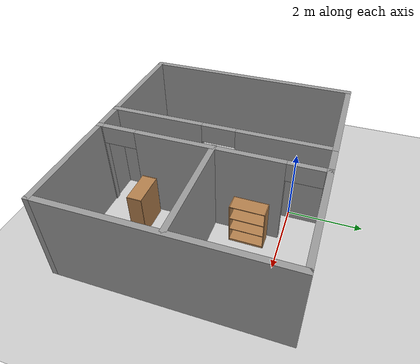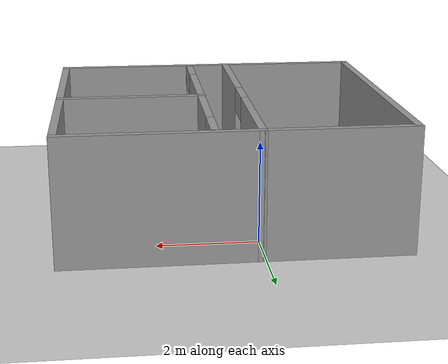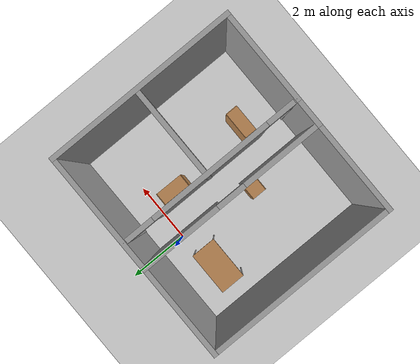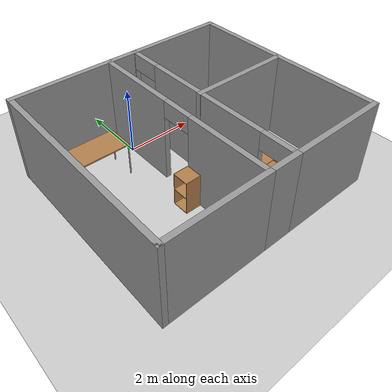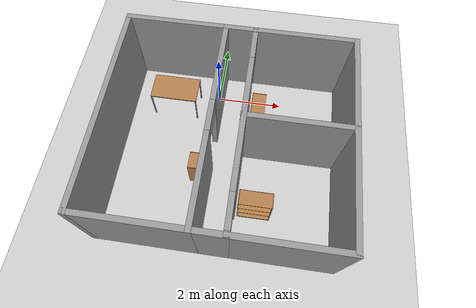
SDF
<sdf version="1.6">
 <world name="default">
  <light name="sun" type="directional">
   <pose>0 0 10 0 -0 0</pose>
   <diffuse>0.8 0.8 0.8 1</diffuse>
   <specular>0.1 0.1 0.1 1</specular>
   <attenuation>
    <range>1000</range>
    <constant>0.9</constant>
    <linear>0.01</linear>
    <quadratic>0.001</quadratic>
   </attenuation>
   <direction>-0.5 0.5 -1</direction>
  </light>
  <model name="ground_plane">
   <static>1</static>
   <link name="link">
    <collision name="collision">
     <geometry><plane><normal>0 0 1</normal><size>100 100</size></plane></geometry>
     <surface><friction><ode><mu>100</mu><mu2>50</mu2></ode></friction></surface>
    </collision>
    <visual name="visual">
     <cast_shadows>0</cast_shadows>
     <geometry><plane><normal>0 0 1</normal><size>100 100</size></plane></geometry>
     <material>
      <script><uri>file://media/materials/scripts/gazebo.material</uri><name>Gazebo/Grey</name></script>
     </material>
    </visual>
   </link>
  </model>
  <gravity>0 0 -9.8</gravity>
  <magnetic_field>6e-06 2.3e-05 -4.2e-05</magnetic_field>
  <atmosphere type="adiabatic"/>
  <physics name="default_physics" default="0" type="ode">
   <max_step_size>0.001</max_step_size>
   <real_time_factor>1</real_time_factor>
   <real_time_update_rate>1000</real_time_update_rate>
  </physics>
  <scene><ambient>0.4 0.4 0.4 1</ambient><background>0.7 0.7 0.7 1</background><shadows>1</shadows></scene>
  <spherical_coordinates>
   <surface_model>EARTH_WGS84</surface_model>
   <latitude_deg>0</latitude_deg>
   <longitude_deg>0</longitude_deg>
   <elevation>0</elevation>
   <heading_deg>0</heading_deg>
  </spherical_coordinates>
  <model name="rooms">
   <pose>0.515176 -2.02758 0 0 -0 0</pose>
   <link name="Wall_1">
    <collision name="Wall_1_Collision">
     <geometry><box><size>6 0.15 2.5</size></box></geometry>
     <pose>0 0 1.25 0 -0 0</pose>
    </collision>
    <visual name="Wall_1_Visual">
     <pose>0 0 1.25 0 -0 0</pose>
     <geometry><box><size>6 0.15 2.5</size></box></geometry>
     <material>
      <script><uri>file://media/materials/scripts/gazebo.material</uri><name>Gazebo/Grey</name></script>
      <ambient>1 1 1 1</ambient>
     </material>
    </visual>
    <pose>3.275 0 0 0 0 -1.5708</pose>
   </link>
   <link name="Wall_15">
    <collision name="Wall_15_Collision">
     <geometry><box><size>3 0.15 2.5</size></box></geometry>
     <pose>0 0 1.25 0 -0 0</pose>
    </collision>
    <visual name="Wall_15_Visual">
     <pose>0 0 1.25 0 -0 0</pose>
     <geometry><box><size>3 0.15 2.5</size></box></geometry>
     <material>
      <script><uri>file://media/materials/scripts/gazebo.material</uri><name>Gazebo/Grey</name></script>
      <ambient>1 1 1 1</ambient>
     </material>
    </visual>
    <pose>1.85 -2.925 0 0 -0 3.14159</pose>
   </link>
   <link name="Wall_17">
    <pose>0.425 0 0 0 -0 1.5708</pose>
    <visual name="Wall_17_Visual_0">
     <pose>-2.91078 0 1.25 0 -0 0</pose>
     <geometry><box><size>0.178433 0.15 2.5</size></box></geometry>
     <material>
      <script><uri>file://media/materials/scripts/gazebo.material</uri><name>Gazebo/Grey</name></script>
      <ambient>1 1 1 1</ambient>
     </material>
    </visual>
    <collision name="Wall_17_Collision_0">
     <geometry><box><size>0.178433 0.15 2.5</size></box></geometry>
     <pose>-2.91078 0 1.25 0 -0 0</pose>
    </collision>
    <visual name="Wall_17_Visual_1">
     <pose>0.006241 0 1.25 0 -0 0</pose>
     <geometry><box><size>3.85562 0.15 2.5</size></box></geometry>
     <material>
      <script><uri>file://media/materials/scripts/gazebo.material</uri><name>Gazebo/Grey</name></script>
      <ambient>1 1 1 1</ambient>
     </material>
    </visual>
    <collision name="Wall_17_Collision_1">
     <geometry><box><size>3.85562 0.15 2.5</size></box></geometry>
     <pose>0.006241 0 1.25 0 -0 0</pose>
    </collision>
    <visual name="Wall_17_Visual_2">
     <pose>2.91702 0 1.25 0 -0 0</pose>
     <geometry><box><size>0.165951 0.15 2.5</size></box></geometry>
     <material>
      <script><uri>file://media/materials/scripts/gazebo.material</uri><name>Gazebo/Grey</name></script>
      <ambient>1 1 1 1</ambient>
     </material>
    </visual>
    <collision name="Wall_17_Collision_2">
     <geometry><box><size>0.165951 0.15 2.5</size></box></geometry>
     <pose>2.91702 0 1.25 0 -0 0</pose>
    </collision>
    <visual name="Wall_17_Visual_3">
     <pose>-2.37157 0 2.25 0 -0 0</pose>
     <geometry><box><size>0.9 0.15 0.5</size></box></geometry>
     <material>
      <script><uri>file://media/materials/scripts/gazebo.material</uri><name>Gazebo/Grey</name></script>
      <ambient>1 1 1 1</ambient>
     </material>
    </visual>
    <collision name="Wall_17_Collision_3">
     <geometry><box><size>0.9 0.15 0.5</size></box></geometry>
     <pose>-2.37157 0 2.25 0 -0 0</pose>
    </collision>
    <visual name="Wall_17_Visual_4">
     <pose>2.38405 0 2.25 0 -0 0</pose>
     <geometry><box><size>0.9 0.15 0.5</size></box></geometry>
     <material>
      <script><uri>file://media/materials/scripts/gazebo.material</uri><name>Gazebo/Grey</name></script>
      <ambient>1 1 1 1</ambient>
     </material>
    </visual>
    <collision name="Wall_17_Collision_4">
     <geometry><box><size>0.9 0.15 0.5</size></box></geometry>
     <pose>2.38405 0 2.25 0 -0 0</pose>
    </collision>
   </link>
   <link name="Wall_19">
    <collision name="Wall_19_Collision">
     <geometry><box><size>1 0.15 2.5</size></box></geometry>
     <pose>0 0 1.25 0 -0 0</pose>
    </collision>
    <visual name="Wall_19_Visual">
     <pose>0 0 1.25 0 -0 0</pose>
     <geometry><box><size>1 0.15 2.5</size></box></geometry>
     <material>
      <script><uri>file://media/materials/scripts/gazebo.material</uri><name>Gazebo/Grey</name></script>
      <ambient>1 1 1 1</ambient>
     </material>
    </visual>
    <pose>0 -2.925 0 0 -0 3.14159</pose>
   </link>
   <link name="Wall_20">
    <pose>-0.425 0 0 0 -0 1.5708</pose>
    <visual name="Wall_20_Visual_0">
     <pose>-1.7245 0 1.25 0 -0 0</pose>
     <geometry><box><size>2.551 0.15 2.5</size></box></geometry>
     <material>
      <script><uri>file://media/materials/scripts/gazebo.material</uri><name>Gazebo/Grey</name></script>
      <ambient>1 1 1 1</ambient>
     </material>
    </visual>
    <collision name="Wall_20_Collision_0">
     <geometry><box><size>2.551 0.15 2.5</size></box></geometry>
     <pose>-1.7245 0 1.25 0 -0 0</pose>
    </collision>
    <visual name="Wall_20_Visual_1">
     <pose>1.7255 0 1.25 0 -0 0</pose>
     <geometry><box><size>2.549 0.15 2.5</size></box></geometry>
     <material>
      <script><uri>file://media/materials/scripts/gazebo.material</uri><name>Gazebo/Grey</name></script>
      <ambient>1 1 1 1</ambient>
     </material>
    </visual>
    <collision name="Wall_20_Collision_1">
     <geometry><box><size>2.549 0.15 2.5</size></box></geometry>
     <pose>1.7255 0 1.25 0 -0 0</pose>
    </collision>
    <visual name="Wall_20_Visual_2">
     <pose>0.000998 0 2.25 0 -0 0</pose>
     <geometry><box><size>0.9 0.15 0.5</size></box></geometry>
     <material>
      <script><uri>file://media/materials/scripts/gazebo.material</uri><name>Gazebo/Grey</name></script>
      <ambient>1 1 1 1</ambient>
     </material>
    </visual>
    <collision name="Wall_20_Collision_2">
     <geometry><box><size>0.9 0.15 0.5</size></box></geometry>
     <pose>0.000998 0 2.25 0 -0 0</pose>
    </collision>
   </link>
   <link name="Wall_22">
    <collision name="Wall_22_Collision">
     <geometry><box><size>3 0.15 2.5</size></box></geometry>
     <pose>0 0 1.25 0 -0 0</pose>
    </collision>
    <visual name="Wall_22_Visual">
     <pose>0 0 1.25 0 -0 0</pose>
     <geometry><box><size>3 0.15 2.5</size></box></geometry>
     <material>
      <script><uri>file://media/materials/scripts/gazebo.material</uri><name>Gazebo/Grey</name></script>
      <ambient>1 1 1 1</ambient>
     </material>
    </visual>
    <pose>-1.85 -2.925 0 0 -0 3.14159</pose>
   </link>
   <link name="Wall_26">
    <collision name="Wall_26_Collision">
     <geometry><box><size>3 0.15 2.5</size></box></geometry>
     <pose>0 0 1.25 0 -0 0</pose>
    </collision>
    <visual name="Wall_26_Visual">
     <pose>0 0 1.25 0 -0 0</pose>
     <geometry><box><size>3 0.15 2.5</size></box></geometry>
     <material>
      <script><uri>file://media/materials/scripts/gazebo.material</uri><name>Gazebo/Grey</name></script>
      <ambient>1 1 1 1</ambient>
     </material>
    </visual>
    <pose>-1.85 2.925 0 0 -0 3.14159</pose>
   </link>
   <link name="Wall_27">
    <collision name="Wall_27_Collision">
     <geometry><box><size>6 0.15 2.5</size></box></geometry>
     <pose>0 0 1.25 0 -0 0</pose>
    </collision>
    <visual name="Wall_27_Visual">
     <pose>0 0 1.25 0 -0 0</pose>
     <geometry><box><size>6 0.15 2.5</size></box></geometry>
     <material>
      <script><uri>file://media/materials/scripts/gazebo.material</uri><name>Gazebo/Grey</name></script>
      <ambient>1 1 1 1</ambient>
     </material>
    </visual>
    <pose>-3.275 0 0 0 0 -1.5708</pose>
   </link>
   <link name="Wall_29">
    <collision name="Wall_29_Collision">
     <geometry><box><size>3.85 0.15 2.5</size></box></geometry>
     <pose>0 0 1.25 0 -0 0</pose>
    </collision>
    <visual name="Wall_29_Visual">
     <pose>0 0 1.25 0 -0 0</pose>
     <geometry><box><size>3.85 0.15 2.5</size></box></geometry>
     <material>
      <script><uri>file://media/materials/scripts/gazebo.material</uri><name>Gazebo/Grey</name></script>
      <ambient>1 1 1 1</ambient>
     </material>
    </visual>
    <pose>1.425 2.925 0 0 -0 0</pose>
   </link>
   <link name="Wall_37">
    <collision name="Wall_37_Collision">
     <geometry><box><size>3 0.15 2.5</size></box></geometry>
     <pose>0 0 1.25 0 -0 0</pose>
    </collision>
    <visual name="Wall_37_Visual">
     <pose>0 0 1.25 0 -0 0</pose>
     <geometry><box><size>3 0.15 2.5</size></box></geometry>
     <material>
      <script><uri>file://media/materials/scripts/gazebo.material</uri><name>Gazebo/Grey</name></script>
      <ambient>1 1 1 1</ambient>
     </material>
    </visual>
    <pose>1.83811 0.137877 0 0 -0 0</pose>
   </link>
   <static>1</static>
  </model>
  <model name="bookshelf">
   <static>1</static>
   <link name="link">
    <inertial><mass>1</mass></inertial>
    <collision name="back">
     <pose>0 0.005 0.6 0 -0 0</pose>
     <geometry><box><size>0.9 0.01 1.2</size></box></geometry>
    </collision>
    <visual name="visual1">
     <pose>0 0.005 0.6 0 -0 0</pose>
     <geometry><box><size>0.9 0.01 1.2</size></box></geometry>
     <material>
      <script><uri>file://media/materials/scripts/gazebo.material</uri><name>Gazebo/Wood</name></script>
     </material>
    </visual>
    <collision name="left_side">
     <pose>0.45 -0.195 0.6 0 -0 0</pose>
     <geometry><box><size>0.02 0.4 1.2</size></box></geometry>
    </collision>
    <visual name="visual2">
     <pose>0.45 -0.195 0.6 0 -0 0</pose>
     <geometry><box><size>0.02 0.4 1.2</size></box></geometry>
     <material>
      <script><uri>file://media/materials/scripts/gazebo.material</uri><name>Gazebo/Wood</name></script>
     </material>
    </visual>
    <collision name="right_side">
     <pose>-0.45 -0.195 0.6 0 -0 0</pose>
     <geometry><box><size>0.02 0.4 1.2</size></box></geometry>
    </collision>
    <visual name="visual3">
     <pose>-0.45 -0.195 0.6 0 -0 0</pose>
     <geometry><box><size>0.02 0.4 1.2</size></box></geometry>
     <material>
      <script><uri>file://media/materials/scripts/gazebo.material</uri><name>Gazebo/Wood</name></script>
     </material>
    </visual>
    <collision name="bottom">
     <pose>0 -0.195 0.03 0 -0 0</pose>
     <geometry><box><size>0.88 0.4 0.06</size></box></geometry>
    </collision>
    <visual name="visual4">
     <pose>0 -0.195 0.03 0 -0 0</pose>
     <geometry><box><size>0.88 0.4 0.06</size></box></geometry>
     <material>
      <script><uri>file://media/materials/scripts/gazebo.material</uri><name>Gazebo/Wood</name></script>
     </material>
    </visual>
    <collision name="top">
     <pose>0 -0.195 1.19 0 -0 0</pose>
     <geometry><box><size>0.88 0.4 0.02</size></box></geometry>
    </collision>
    <visual name="visual5">
     <pose>0 -0.195 1.19 0 -0 0</pose>
     <geometry><box><size>0.88 0.4 0.02</size></box></geometry>
     <material>
      <script><uri>file://media/materials/scripts/gazebo.material</uri><name>Gazebo/Wood</name></script>
     </material>
    </visual>
    <collision name="low_shelf">
     <pose>0 -0.195 0.43 0 -0 0</pose>
     <geometry><box><size>0.88 0.4 0.02</size></box></geometry>
    </collision>
    <visual name="visual6">
     <pose>0 -0.195 0.43 0 -0 0</pose>
     <geometry><box><size>0.88 0.4 0.02</size></box></geometry>
     <material>
      <script><uri>file://media/materials/scripts/gazebo.material</uri><name>Gazebo/Wood</name></script>
     </material>
    </visual>
    <collision name="high_shelf">
     <pose>0 -0.195 0.8 0 -0 0</pose>
     <geometry><box><size>0.88 0.4 0.02</size></box></geometry>
    </collision>
    <visual name="visual7">
     <pose>0 -0.195 0.8 0 -0 0</pose>
     <geometry><box><size>0.88 0.4 0.02</size></box></geometry>
     <material>
      <script><uri>file://media/materials/scripts/gazebo.material</uri><name>Gazebo/Wood</name></script>
     </material>
    </visual>
   </link>
   <pose>1.09096 -0.833451 0 0 -0 1.56179</pose>
  </model>
  <model name="table">
   <static>0</static>
   <link name="link">
    <collision name="surface">
     <pose>0 0 1 0 -0 0</pose>
     <geometry><box><size>1.5 0.8 0.03</size></box></geometry>
     <surface><friction><ode><mu>0.6</mu><mu2>0.6</mu2></ode></friction></surface>
    </collision>
    <visual name="visual1">
     <pose>0 0 1 0 -0 0</pose>
     <geometry><box><size>1.4 0.8 0.04</size></box></geometry>
     <material>
      <script><uri>file://media/materials/scripts/gazebo.material</uri><name>Gazebo/Wood</name></script>
     </material>
    </visual>
    <collision name="front_left_leg">
     <pose>0.68 0.38 0.5 0 -0 0</pose>
     <geometry><cylinder><radius>0.02</radius><length>1</length></cylinder></geometry>
    </collision>
    <visual name="front_left_leg">
     <pose>0.68 0.38 0.5 0 -0 0</pose>
     <geometry><cylinder><radius>0.02</radius><length>1</length></cylinder></geometry>
     <material>
      <script><uri>file://media/materials/scripts/gazebo.material</uri><name>Gazebo/Grey</name></script>
     </material>
    </visual>
    <collision name="front_right_leg">
     <pose>0.68 -0.38 0.5 0 -0 0</pose>
     <geometry><cylinder><radius>0.02</radius><length>1</length></cylinder></geometry>
    </collision>
    <visual name="front_right_leg">
     <pose>0.68 -0.38 0.5 0 -0 0</pose>
     <geometry><cylinder><radius>0.02</radius><length>1</length></cylinder></geometry>
     <material>
      <script><uri>file://media/materials/scripts/gazebo.material</uri><name>Gazebo/Grey</name></script>
     </material>
    </visual>
    <collision name="back_right_leg">
     <pose>-0.68 -0.38 0.5 0 -0 0</pose>
     <geometry><cylinder><radius>0.02</radius><length>1</length></cylinder></geometry>
    </collision>
    <visual name="back_right_leg">
     <pose>-0.68 -0.38 0.5 0 -0 0</pose>
     <geometry><cylinder><radius>0.02</radius><length>1</length></cylinder></geometry>
     <material>
      <script><uri>file://media/materials/scripts/gazebo.material</uri><name>Gazebo/Grey</name></script>
     </material>
    </visual>
    <collision name="back_left_leg">
     <pose>-0.68 0.38 0.5 0 -0 0</pose>
     <geometry><cylinder><radius>0.02</radius><length>1</length></cylinder></geometry>
    </collision>
    <visual name="back_left_leg">
     <pose>-0.68 0.38 0.5 0 -0 0</pose>
     <geometry><cylinder><radius>0.02</radius><length>1</length></cylinder></geometry>
     <material>
      <script><uri>file://media/materials/scripts/gazebo.material</uri><name>Gazebo/Grey</name></script>
     </material>
    </visual>
    <inertial>
     <inertia><ixx>1</ixx><ixy>0</ixy><ixz>0</ixz><iyy>1</iyy><iyz>0</iyz><izz>1</izz></inertia>
     <mass>1</mass>
    </inertial>
   </link>
   <pose>-1.29511 -0.411235 -1e-06 1e-06 -0 0</pose>
  </model>
  <model name="cabinet">
   <static>1</static>
   <link name="cabinet_bottom_plate">
    <inertial>
     <pose>0 0 -1 0 -0 0</pose>
     <inertia><ixx>2.05</ixx><ixy>0</ixy><ixz>0</ixz><iyy>2.05</iyy><iyz>0</iyz><izz>2.05</izz></inertia>
     <mass>25</mass>
    </inertial>
    <collision name="cabinet_bottom_plate_geom">
     <pose>0 0 0.01 0 -0 0</pose>
     <geometry><box><size>0.45 0.45 0.02</size></box></geometry>
    </collision>
    <visual name="cabinet_bottom_plate_geom_visual">
     <pose>0 0 0.01 0 -0 0</pose>
     <geometry><box><size>0.45 0.45 0.02</size></box></geometry>
     <material>
      <script><uri>file://media/materials/scripts/gazebo.material</uri><name>Gazebo/Wood</name></script>
     </material>
    </visual>
    <collision name="cabinet_bottom_plate_geom_cabinet_back_plate">
     <pose>0.235 0 0.51 0 -0 0</pose>
     <geometry><box><size>0.02 0.45 1.02</size></box></geometry>
    </collision>
    <visual name="cabinet_bottom_plate_geom_cabinet_back_plate_visual">
     <pose>0.235 0 0.51 0 -0 0</pose>
     <geometry><box><size>0.02 0.45 1.02</size></box></geometry>
     <material>
      <script><uri>file://media/materials/scripts/gazebo.material</uri><name>Gazebo/Wood</name></script>
     </material>
    </visual>
    <collision name="cabinet_bottom_plate_geom_cabinet_left_plate">
     <pose>0 0.235 0.51 0 -0 0</pose>
     <geometry><box><size>0.45 0.02 1.02</size></box></geometry>
    </collision>
    <visual name="cabinet_bottom_plate_geom_cabinet_left_plate_visual">
     <pose>0 0.235 0.51 0 -0 0</pose>
     <geometry><box><size>0.45 0.02 1.02</size></box></geometry>
     <material>
      <script><uri>file://media/materials/scripts/gazebo.material</uri><name>Gazebo/Wood</name></script>
     </material>
    </visual>
    <collision name="cabinet_bottom_plate_geom_cabinet_middle_plate">
     <pose>0 0 0.51 0 -0 0</pose>
     <geometry><box><size>0.45 0.45 0.02</size></box></geometry>
    </collision>
    <visual name="cabinet_bottom_plate_geom_cabinet_middle_plate_visual">
     <pose>0 0 0.51 0 -0 0</pose>
     <geometry><box><size>0.45 0.45 0.02</size></box></geometry>
     <material>
      <script><uri>file://media/materials/scripts/gazebo.material</uri><name>Gazebo/Wood</name></script>
     </material>
    </visual>
    <collision name="cabinet_bottom_plate_geom_cabinet_right_plate">
     <pose>0 -0.235 0.51 0 -0 0</pose>
     <geometry><box><size>0.45 0.02 1.02</size></box></geometry>
    </collision>
    <visual name="cabinet_bottom_plate_geom_cabinet_right_plate_visual">
     <pose>0 -0.235 0.51 0 -0 0</pose>
     <geometry><box><size>0.45 0.02 1.02</size></box></geometry>
     <material>
      <script><uri>file://media/materials/scripts/gazebo.material</uri><name>Gazebo/Wood</name></script>
     </material>
    </visual>
    <collision name="cabinet_bottom_plate_geom_cabinet_top_plate">
     <pose>0 0 1.01 0 -0 0</pose>
     <geometry><box><size>0.45 0.45 0.02</size></box></geometry>
    </collision>
    <visual name="cabinet_bottom_plate_geom_cabinet_top_plate_visual">
     <pose>0 0 1.01 0 -0 0</pose>
     <geometry><box><size>0.45 0.45 0.02</size></box></geometry>
     <material>
      <script><uri>file://media/materials/scripts/gazebo.material</uri><name>Gazebo/Wood</name></script>
     </material>
    </visual>
   </link>
   <pose>-0.223303 -2.71597 0 0 -0 0</pose>
  </model>
  <model name="bookshelf_0">
   <static>1</static>
   <link name="link">
    <inertial><mass>1</mass></inertial>
    <collision name="back">
     <pose>0 0.005 0.6 0 -0 0</pose>
     <geometry><box><size>0.9 0.01 1.2</size></box></geometry>
    </collision>
    <visual name="visual1">
     <pose>0 0.005 0.6 0 -0 0</pose>
     <geometry><box><size>0.9 0.01 1.2</size></box></geometry>
     <material>
      <script><uri>file://media/materials/scripts/gazebo.material</uri><name>Gazebo/Wood</name></script>
     </material>
    </visual>
    <collision name="left_side">
     <pose>0.45 -0.195 0.6 0 -0 0</pose>
     <geometry><box><size>0.02 0.4 1.2</size></box></geometry>
    </collision>
    <visual name="visual2">
     <pose>0.45 -0.195 0.6 0 -0 0</pose>
     <geometry><box><size>0.02 0.4 1.2</size></box></geometry>
     <material>
      <script><uri>file://media/materials/scripts/gazebo.material</uri><name>Gazebo/Wood</name></script>
     </material>
    </visual>
    <collision name="right_side">
     <pose>-0.45 -0.195 0.6 0 -0 0</pose>
     <geometry><box><size>0.02 0.4 1.2</size></box></geometry>
    </collision>
    <visual name="visual3">
     <pose>-0.45 -0.195 0.6 0 -0 0</pose>
     <geometry><box><size>0.02 0.4 1.2</size></box></geometry>
     <material>
      <script><uri>file://media/materials/scripts/gazebo.material</uri><name>Gazebo/Wood</name></script>
     </material>
    </visual>
    <collision name="bottom">
     <pose>0 -0.195 0.03 0 -0 0</pose>
     <geometry><box><size>0.88 0.4 0.06</size></box></geometry>
    </collision>
    <visual name="visual4">
     <pose>0 -0.195 0.03 0 -0 0</pose>
     <geometry><box><size>0.88 0.4 0.06</size></box></geometry>
     <material>
      <script><uri>file://media/materials/scripts/gazebo.material</uri><name>Gazebo/Wood</name></script>
     </material>
    </visual>
    <collision name="top">
     <pose>0 -0.195 1.19 0 -0 0</pose>
     <geometry><box><size>0.88 0.4 0.02</size></box></geometry>
    </collision>
    <visual name="visual5">
     <pose>0 -0.195 1.19 0 -0 0</pose>
     <geometry><box><size>0.88 0.4 0.02</size></box></geometry>
     <material>
      <script><uri>file://media/materials/scripts/gazebo.material</uri><name>Gazebo/Wood</name></script>
     </material>
    </visual>
    <collision name="low_shelf">
     <pose>0 -0.195 0.43 0 -0 0</pose>
     <geometry><box><size>0.88 0.4 0.02</size></box></geometry>
    </collision>
    <visual name="visual6">
     <pose>0 -0.195 0.43 0 -0 0</pose>
     <geometry><box><size>0.88 0.4 0.02</size></box></geometry>
     <material>
      <script><uri>file://media/materials/scripts/gazebo.material</uri><name>Gazebo/Wood</name></script>
     </material>
    </visual>
    <collision name="high_shelf">
     <pose>0 -0.195 0.8 0 -0 0</pose>
     <geometry><box><size>0.88 0.4 0.02</size></box></geometry>
    </collision>
    <visual name="visual7">
     <pose>0 -0.195 0.8 0 -0 0</pose>
     <geometry><box><size>0.88 0.4 0.02</size></box></geometry>
     <material>
      <script><uri>file://media/materials/scripts/gazebo.material</uri><name>Gazebo/Wood</name></script>
     </material>
    </visual>
   </link>
   <pose>1.53269 -3.44315 0 0 -0 0</pose>
  </model>
 </world>
</sdf>
